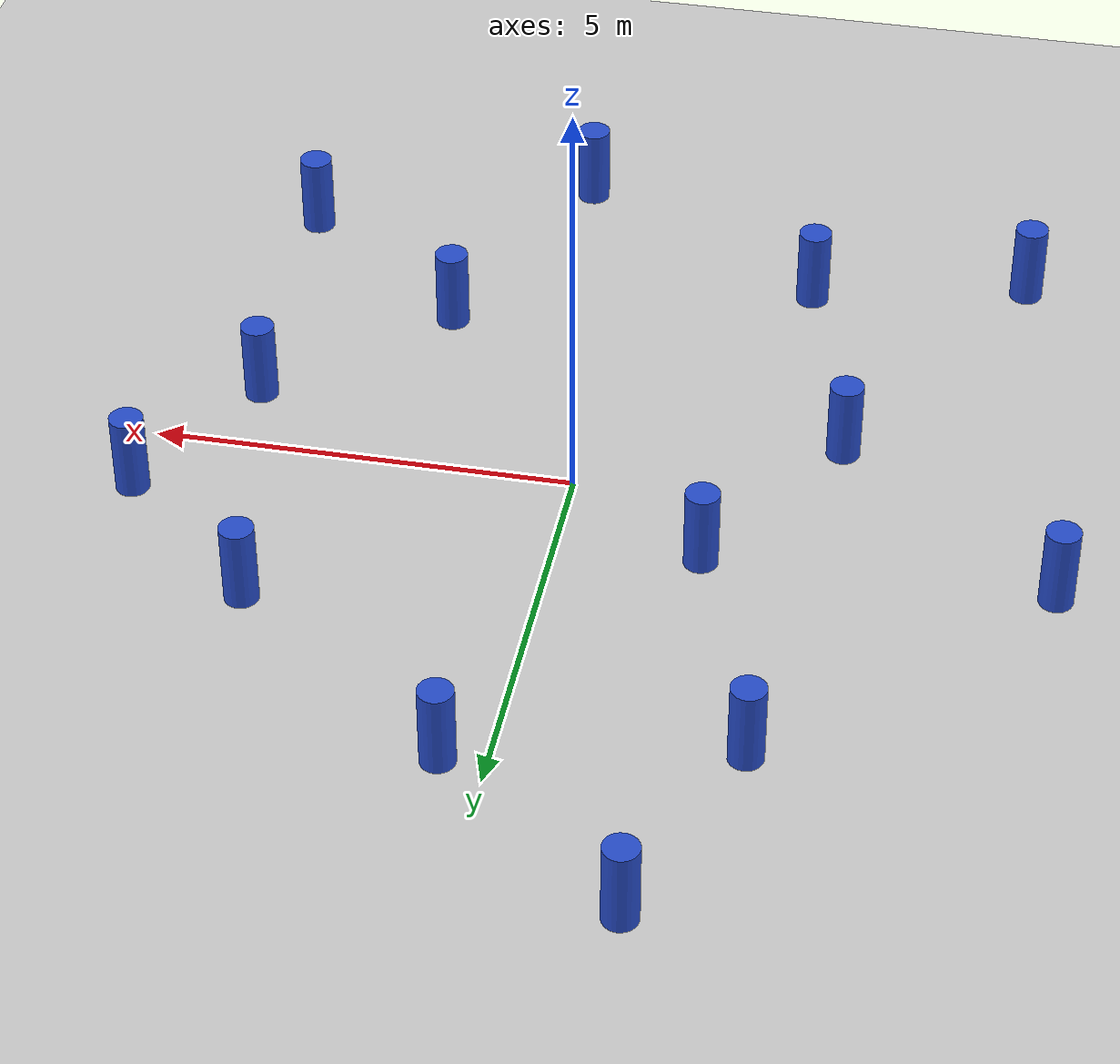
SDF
<sdf version="1.7">
 <world name="default">
  <physics type="ode">
   <ode>
    <solver>
     <type>quick</type>
     <iters>20</iters>
     <sor>1</sor>
     <use_dynamic_moi_rescaling>0</use_dynamic_moi_rescaling>
    </solver>
    <constraints>
     <cfm>0</cfm>
     <erp>0.2</erp>
     <contact_max_correcting_vel>100</contact_max_correcting_vel>
     <contact_surface_layer>0</contact_surface_layer>
    </constraints>
   </ode>
   <real_time_update_rate>1000</real_time_update_rate>
   <max_step_size>0.001</max_step_size>
   <real_time_factor>1</real_time_factor>
  </physics>
  <light name="sun" type="directional">
   <pose>0 0 10 0 -0 0</pose>
   <diffuse>0.8 0.8 0.8 1</diffuse>
   <specular>0.2 0.2 0.2 1</specular>
   <attenuation>
    <range>1000</range>
    <constant>0.9</constant>
    <linear>0.01</linear>
    <quadratic>0.001</quadratic>
   </attenuation>
   <direction>-0.5 0.1 -0.9</direction>
   <spot><inner_angle>0</inner_angle><outer_angle>0</outer_angle><falloff>0</falloff></spot>
  </light>
  <model name="ground_plane">
   <static>1</static>
   <link name="link">
    <collision name="collision">
     <geometry><plane><normal>0 0 1</normal><size>100 100</size></plane></geometry>
     <surface>
      <contact><collide_bitmask>65535</collide_bitmask></contact>
      <friction><ode><mu>100</mu><mu2>50</mu2></ode></friction>
     </surface>
    </collision>
    <visual name="visual">
     <cast_shadows>0</cast_shadows>
     <geometry><plane><normal>0 0 1</normal><size>100 100</size></plane></geometry>
     <material>
      <script><uri>file://media/materials/scripts/gazebo.material</uri><name>Gazebo/Grey</name></script>
     </material>
    </visual>
   </link>
  </model>
  <gravity>0 0 -9.81</gravity>
  <magnetic_field>6e-06 2.3e-05 -4.2e-05</magnetic_field>
  <atmosphere type="adiabatic"/>
  <scene><ambient>0.4 0.4 0.4 1</ambient><background>0.7 0.7 0.7 1</background><shadows>1</shadows></scene>
  <spherical_coordinates>
   <surface_model>EARTH_WGS84</surface_model>
   <latitude_deg>0</latitude_deg>
   <longitude_deg>0</longitude_deg>
   <elevation>0</elevation>
   <heading_deg>0</heading_deg>
  </spherical_coordinates>
  <model name="20x100cm_cylinder">
   <link name="link">
    <inertial>
     <mass>1</mass>
     <inertia><ixx>0.145833</ixx><ixy>0</ixy><ixz>0</ixz><iyy>0.145833</iyy><iyz>0</iyz><izz>0.125</izz></inertia>
    </inertial>
    <visual name="visual">
     <geometry><cylinder><radius>0.2</radius><length>1</length></cylinder></geometry>
     <material>
      <script><name>Gazebo/Blue</name><uri>file://media/materials/scripts/gazebo.material</uri></script>
      <shader type="pixel"><normal_map>__default__</normal_map></shader>
      <ambient>0.3 0.3 0.3 1</ambient>
      <diffuse>0.7 0.7 0.7 1</diffuse>
      <specular>0.01 0.01 0.01 1</specular>
      <emissive>0 0 0 1</emissive>
     </material>
    </visual>
    <collision name="collision">
     <geometry><cylinder><radius>0.2</radius><length>1</length></cylinder></geometry>
     <surface>
      <friction>
       <ode><mu>1</mu><mu2>1</mu2><fdir1>0 0 0</fdir1><slip1>0</slip1><slip2>0</slip2></ode>
       <torsional>
        <coefficient>1</coefficient>
        <patch_radius>0</patch_radius>
        <surface_radius>0</surface_radius>
        <use_patch_radius>1</use_patch_radius>
        <ode><slip>0</slip></ode>
       </torsional>
      </friction>
      <bounce><restitution_coefficient>0</restitution_coefficient><threshold>1e+06</threshold></bounce>
      <contact>
       <collide_without_contact>0</collide_without_contact>
       <collide_without_contact_bitmask>1</collide_without_contact_bitmask>
       <collide_bitmask>1</collide_bitmask>
       <ode>
        <soft_cfm>0</soft_cfm>
        <soft_erp>0.2</soft_erp>
        <kp>1e+13</kp>
        <kd>1</kd>
        <max_vel>0.01</max_vel>
        <min_depth>0</min_depth>
       </ode>
       <bullet>
        <split_impulse>1</split_impulse>
        <split_impulse_penetration_threshold>-0.01</split_impulse_penetration_threshold>
        <soft_cfm>0</soft_cfm>
        <soft_erp>0.2</soft_erp>
        <kp>1e+13</kp>
        <kd>1</kd>
       </bullet>
      </contact>
     </surface>
    </collision>
   </link>
   <static>0</static>
   <pose>3.23524 2.65029 0.499991 0 0 -0.000151</pose>
  </model>
  <model name="20x100cm_cylinder_clone">
   <link name="link">
    <inertial>
     <mass>1</mass>
     <inertia><ixx>0.145833</ixx><ixy>0</ixy><ixz>0</ixz><iyy>0.145833</iyy><iyz>0</iyz><izz>0.125</izz></inertia>
    </inertial>
    <visual name="visual">
     <geometry><cylinder><radius>0.2</radius><length>1</length></cylinder></geometry>
     <material>
      <script><name>Gazebo/Blue</name><uri>file://media/materials/scripts/gazebo.material</uri></script>
      <shader type="pixel"><normal_map>__default__</normal_map></shader>
      <ambient>0.3 0.3 0.3 1</ambient>
      <diffuse>0.7 0.7 0.7 1</diffuse>
      <specular>0.01 0.01 0.01 1</specular>
      <emissive>0 0 0 1</emissive>
     </material>
    </visual>
    <collision name="collision">
     <geometry><cylinder><radius>0.2</radius><length>1</length></cylinder></geometry>
     <surface>
      <friction>
       <ode><mu>1</mu><mu2>1</mu2><fdir1>0 0 0</fdir1><slip1>0</slip1><slip2>0</slip2></ode>
       <torsional>
        <coefficient>1</coefficient>
        <patch_radius>0</patch_radius>
        <surface_radius>0</surface_radius>
        <use_patch_radius>1</use_patch_radius>
        <ode><slip>0</slip></ode>
       </torsional>
      </friction>
      <bounce><restitution_coefficient>0</restitution_coefficient><threshold>1e+06</threshold></bounce>
      <contact>
       <collide_without_contact>0</collide_without_contact>
       <collide_without_contact_bitmask>1</collide_without_contact_bitmask>
       <collide_bitmask>1</collide_bitmask>
       <ode>
        <soft_cfm>0</soft_cfm>
        <soft_erp>0.2</soft_erp>
        <kp>1e+13</kp>
        <kd>1</kd>
        <max_vel>0.01</max_vel>
        <min_depth>0</min_depth>
       </ode>
       <bullet>
        <split_impulse>1</split_impulse>
        <split_impulse_penetration_threshold>-0.01</split_impulse_penetration_threshold>
        <soft_cfm>0</soft_cfm>
        <soft_erp>0.2</soft_erp>
        <kp>1e+13</kp>
        <kd>1</kd>
       </bullet>
      </contact>
     </surface>
    </collision>
   </link>
   <static>0</static>
   <pose>0.513241 4.78146 0.499991 0 0 -0.000152</pose>
  </model>
  <model name="20x100cm_cylinder_clone_0">
   <link name="link">
    <inertial>
     <mass>1</mass>
     <inertia><ixx>0.145833</ixx><ixy>0</ixy><ixz>0</ixz><iyy>0.145833</iyy><iyz>0</iyz><izz>0.125</izz></inertia>
    </inertial>
    <visual name="visual">
     <geometry><cylinder><radius>0.2</radius><length>1</length></cylinder></geometry>
     <material>
      <script><name>Gazebo/Blue</name><uri>file://media/materials/scripts/gazebo.material</uri></script>
      <shader type="pixel"><normal_map>__default__</normal_map></shader>
      <ambient>0.3 0.3 0.3 1</ambient>
      <diffuse>0.7 0.7 0.7 1</diffuse>
      <specular>0.01 0.01 0.01 1</specular>
      <emissive>0 0 0 1</emissive>
     </material>
    </visual>
    <collision name="collision">
     <geometry><cylinder><radius>0.2</radius><length>1</length></cylinder></geometry>
     <surface>
      <friction>
       <ode><mu>1</mu><mu2>1</mu2><fdir1>0 0 0</fdir1><slip1>0</slip1><slip2>0</slip2></ode>
       <torsional>
        <coefficient>1</coefficient>
        <patch_radius>0</patch_radius>
        <surface_radius>0</surface_radius>
        <use_patch_radius>1</use_patch_radius>
        <ode><slip>0</slip></ode>
       </torsional>
      </friction>
      <bounce><restitution_coefficient>0</restitution_coefficient><threshold>1e+06</threshold></bounce>
      <contact>
       <collide_without_contact>0</collide_without_contact>
       <collide_without_contact_bitmask>1</collide_without_contact_bitmask>
       <collide_bitmask>1</collide_bitmask>
       <ode>
        <soft_cfm>0</soft_cfm>
        <soft_erp>0.2</soft_erp>
        <kp>1e+13</kp>
        <kd>1</kd>
        <max_vel>0.01</max_vel>
        <min_depth>0</min_depth>
       </ode>
       <bullet>
        <split_impulse>1</split_impulse>
        <split_impulse_penetration_threshold>-0.01</split_impulse_penetration_threshold>
        <soft_cfm>0</soft_cfm>
        <soft_erp>0.2</soft_erp>
        <kp>1e+13</kp>
        <kd>1</kd>
       </bullet>
      </contact>
     </surface>
    </collision>
   </link>
   <static>0</static>
   <pose>-2.64997 4.13277 0.499991 0 0 -0.000142</pose>
  </model>
  <model name="20x100cm_cylinder_clone_1">
   <link name="link">
    <inertial>
     <mass>1</mass>
     <inertia><ixx>0.145833</ixx><ixy>0</ixy><ixz>0</ixz><iyy>0.145833</iyy><iyz>0</iyz><izz>0.125</izz></inertia>
    </inertial>
    <visual name="visual">
     <geometry><cylinder><radius>0.2</radius><length>1</length></cylinder></geometry>
     <material>
      <script><name>Gazebo/Blue</name><uri>file://media/materials/scripts/gazebo.material</uri></script>
      <shader type="pixel"><normal_map>__default__</normal_map></shader>
      <ambient>0.3 0.3 0.3 1</ambient>
      <diffuse>0.7 0.7 0.7 1</diffuse>
      <specular>0.01 0.01 0.01 1</specular>
      <emissive>0 0 0 1</emissive>
     </material>
    </visual>
    <collision name="collision">
     <geometry><cylinder><radius>0.2</radius><length>1</length></cylinder></geometry>
     <surface>
      <friction>
       <ode><mu>1</mu><mu2>1</mu2><fdir1>0 0 0</fdir1><slip1>0</slip1><slip2>0</slip2></ode>
       <torsional>
        <coefficient>1</coefficient>
        <patch_radius>0</patch_radius>
        <surface_radius>0</surface_radius>
        <use_patch_radius>1</use_patch_radius>
        <ode><slip>0</slip></ode>
       </torsional>
      </friction>
      <bounce><restitution_coefficient>0</restitution_coefficient><threshold>1e+06</threshold></bounce>
      <contact>
       <collide_without_contact>0</collide_without_contact>
       <collide_without_contact_bitmask>1</collide_without_contact_bitmask>
       <collide_bitmask>1</collide_bitmask>
       <ode>
        <soft_cfm>0</soft_cfm>
        <soft_erp>0.2</soft_erp>
        <kp>1e+13</kp>
        <kd>1</kd>
        <max_vel>0.01</max_vel>
        <min_depth>0</min_depth>
       </ode>
       <bullet>
        <split_impulse>1</split_impulse>
        <split_impulse_penetration_threshold>-0.01</split_impulse_penetration_threshold>
        <soft_cfm>0</soft_cfm>
        <soft_erp>0.2</soft_erp>
        <kp>1e+13</kp>
        <kd>1</kd>
       </bullet>
      </contact>
     </surface>
    </collision>
   </link>
   <static>0</static>
   <pose>2.06646 -2.88631 0.5 0 0 -0.000133</pose>
  </model>
  <model name="20x100cm_cylinder_clone_2">
   <link name="link">
    <inertial>
     <mass>1</mass>
     <inertia><ixx>0.145833</ixx><ixy>0</ixy><ixz>0</ixz><iyy>0.145833</iyy><iyz>0</iyz><izz>0.125</izz></inertia>
    </inertial>
    <visual name="visual">
     <geometry><cylinder><radius>0.2</radius><length>1</length></cylinder></geometry>
     <material>
      <script><name>Gazebo/Blue</name><uri>file://media/materials/scripts/gazebo.material</uri></script>
      <shader type="pixel"><normal_map>__default__</normal_map></shader>
      <ambient>0.3 0.3 0.3 1</ambient>
      <diffuse>0.7 0.7 0.7 1</diffuse>
      <specular>0.01 0.01 0.01 1</specular>
      <emissive>0 0 0 1</emissive>
     </material>
    </visual>
    <collision name="collision">
     <geometry><cylinder><radius>0.2</radius><length>1</length></cylinder></geometry>
     <surface>
      <friction>
       <ode><mu>1</mu><mu2>1</mu2><fdir1>0 0 0</fdir1><slip1>0</slip1><slip2>0</slip2></ode>
       <torsional>
        <coefficient>1</coefficient>
        <patch_radius>0</patch_radius>
        <surface_radius>0</surface_radius>
        <use_patch_radius>1</use_patch_radius>
        <ode><slip>0</slip></ode>
       </torsional>
      </friction>
      <bounce><restitution_coefficient>0</restitution_coefficient><threshold>1e+06</threshold></bounce>
      <contact>
       <collide_without_contact>0</collide_without_contact>
       <collide_without_contact_bitmask>1</collide_without_contact_bitmask>
       <collide_bitmask>1</collide_bitmask>
       <ode>
        <soft_cfm>0</soft_cfm>
        <soft_erp>0.2</soft_erp>
        <kp>1e+13</kp>
        <kd>1</kd>
        <max_vel>0.01</max_vel>
        <min_depth>0</min_depth>
       </ode>
       <bullet>
        <split_impulse>1</split_impulse>
        <split_impulse_penetration_threshold>-0.01</split_impulse_penetration_threshold>
        <soft_cfm>0</soft_cfm>
        <soft_erp>0.2</soft_erp>
        <kp>1e+13</kp>
        <kd>1</kd>
       </bullet>
      </contact>
     </surface>
    </collision>
   </link>
   <static>0</static>
   <pose>-3.0093 -1.15809 0.499991 -1e-06 -0 -0.000118</pose>
  </model>
  <model name="20x100cm_cylinder_clone_3">
   <link name="link">
    <inertial>
     <mass>1</mass>
     <inertia><ixx>0.145833</ixx><ixy>0</ixy><ixz>0</ixz><iyy>0.145833</iyy><iyz>0</iyz><izz>0.125</izz></inertia>
    </inertial>
    <visual name="visual">
     <geometry><cylinder><radius>0.2</radius><length>1</length></cylinder></geometry>
     <material>
      <script><name>Gazebo/Blue</name><uri>file://media/materials/scripts/gazebo.material</uri></script>
      <shader type="pixel"><normal_map>__default__</normal_map></shader>
      <ambient>0.3 0.3 0.3 1</ambient>
      <diffuse>0.7 0.7 0.7 1</diffuse>
      <specular>0.01 0.01 0.01 1</specular>
      <emissive>0 0 0 1</emissive>
     </material>
    </visual>
    <collision name="collision">
     <geometry><cylinder><radius>0.2</radius><length>1</length></cylinder></geometry>
     <surface>
      <friction>
       <ode><mu>1</mu><mu2>1</mu2><fdir1>0 0 0</fdir1><slip1>0</slip1><slip2>0</slip2></ode>
       <torsional>
        <coefficient>1</coefficient>
        <patch_radius>0</patch_radius>
        <surface_radius>0</surface_radius>
        <use_patch_radius>1</use_patch_radius>
        <ode><slip>0</slip></ode>
       </torsional>
      </friction>
      <bounce><restitution_coefficient>0</restitution_coefficient><threshold>1e+06</threshold></bounce>
      <contact>
       <collide_without_contact>0</collide_without_contact>
       <collide_without_contact_bitmask>1</collide_without_contact_bitmask>
       <collide_bitmask>1</collide_bitmask>
       <ode>
        <soft_cfm>0</soft_cfm>
        <soft_erp>0.2</soft_erp>
        <kp>1e+13</kp>
        <kd>1</kd>
        <max_vel>0.01</max_vel>
        <min_depth>0</min_depth>
       </ode>
       <bullet>
        <split_impulse>1</split_impulse>
        <split_impulse_penetration_threshold>-0.01</split_impulse_penetration_threshold>
        <soft_cfm>0</soft_cfm>
        <soft_erp>0.2</soft_erp>
        <kp>1e+13</kp>
        <kd>1</kd>
       </bullet>
      </contact>
     </surface>
    </collision>
   </link>
   <static>0</static>
   <pose>-2.24187 -4.17972 0.49999 -0 -0 -0.000114</pose>
  </model>
  <model name="20x100cm_cylinder_clone_4">
   <link name="link">
    <inertial>
     <mass>1</mass>
     <inertia><ixx>0.145833</ixx><ixy>0</ixy><ixz>0</ixz><iyy>0.145833</iyy><iyz>0</iyz><izz>0.125</izz></inertia>
    </inertial>
    <visual name="visual">
     <geometry><cylinder><radius>0.2</radius><length>1</length></cylinder></geometry>
     <material>
      <script><name>Gazebo/Blue</name><uri>file://media/materials/scripts/gazebo.material</uri></script>
      <shader type="pixel"><normal_map>__default__</normal_map></shader>
      <ambient>0.3 0.3 0.3 1</ambient>
      <diffuse>0.7 0.7 0.7 1</diffuse>
      <specular>0.01 0.01 0.01 1</specular>
      <emissive>0 0 0 1</emissive>
     </material>
    </visual>
    <collision name="collision">
     <geometry><cylinder><radius>0.2</radius><length>1</length></cylinder></geometry>
     <surface>
      <friction>
       <ode><mu>1</mu><mu2>1</mu2><fdir1>0 0 0</fdir1><slip1>0</slip1><slip2>0</slip2></ode>
       <torsional>
        <coefficient>1</coefficient>
        <patch_radius>0</patch_radius>
        <surface_radius>0</surface_radius>
        <use_patch_radius>1</use_patch_radius>
        <ode><slip>0</slip></ode>
       </torsional>
      </friction>
      <bounce><restitution_coefficient>0</restitution_coefficient><threshold>1e+06</threshold></bounce>
      <contact>
       <collide_without_contact>0</collide_without_contact>
       <collide_without_contact_bitmask>1</collide_without_contact_bitmask>
       <collide_bitmask>1</collide_bitmask>
       <ode>
        <soft_cfm>0</soft_cfm>
        <soft_erp>0.2</soft_erp>
        <kp>1e+13</kp>
        <kd>1</kd>
        <max_vel>0.01</max_vel>
        <min_depth>0</min_depth>
       </ode>
       <bullet>
        <split_impulse>1</split_impulse>
        <split_impulse_penetration_threshold>-0.01</split_impulse_penetration_threshold>
        <soft_cfm>0</soft_cfm>
        <soft_erp>0.2</soft_erp>
        <kp>1e+13</kp>
        <kd>1</kd>
       </bullet>
      </contact>
     </surface>
    </collision>
   </link>
   <static>0</static>
   <pose>-5.65723 1.00392 0.49999 0 0 -0.00011</pose>
  </model>
  <model name="20x100cm_cylinder_clone_5">
   <link name="link">
    <inertial>
     <mass>1</mass>
     <inertia><ixx>0.145833</ixx><ixy>0</ixy><ixz>0</ixz><iyy>0.145833</iyy><iyz>0</iyz><izz>0.125</izz></inertia>
    </inertial>
    <visual name="visual">
     <geometry><cylinder><radius>0.2</radius><length>1</length></cylinder></geometry>
     <material>
      <script><name>Gazebo/Blue</name><uri>file://media/materials/scripts/gazebo.material</uri></script>
      <shader type="pixel"><normal_map>__default__</normal_map></shader>
      <ambient>0.3 0.3 0.3 1</ambient>
      <diffuse>0.7 0.7 0.7 1</diffuse>
      <specular>0.01 0.01 0.01 1</specular>
      <emissive>0 0 0 1</emissive>
     </material>
    </visual>
    <collision name="collision">
     <geometry><cylinder><radius>0.2</radius><length>1</length></cylinder></geometry>
     <surface>
      <friction>
       <ode><mu>1</mu><mu2>1</mu2><fdir1>0 0 0</fdir1><slip1>0</slip1><slip2>0</slip2></ode>
       <torsional>
        <coefficient>1</coefficient>
        <patch_radius>0</patch_radius>
        <surface_radius>0</surface_radius>
        <use_patch_radius>1</use_patch_radius>
        <ode><slip>0</slip></ode>
       </torsional>
      </friction>
      <bounce><restitution_coefficient>0</restitution_coefficient><threshold>1e+06</threshold></bounce>
      <contact>
       <collide_without_contact>0</collide_without_contact>
       <collide_without_contact_bitmask>1</collide_without_contact_bitmask>
       <collide_bitmask>1</collide_bitmask>
       <ode>
        <soft_cfm>0</soft_cfm>
        <soft_erp>0.2</soft_erp>
        <kp>1e+13</kp>
        <kd>1</kd>
        <max_vel>0.01</max_vel>
        <min_depth>0</min_depth>
       </ode>
       <bullet>
        <split_impulse>1</split_impulse>
        <split_impulse_penetration_threshold>-0.01</split_impulse_penetration_threshold>
        <soft_cfm>0</soft_cfm>
        <soft_erp>0.2</soft_erp>
        <kp>1e+13</kp>
        <kd>1</kd>
       </bullet>
      </contact>
     </surface>
    </collision>
   </link>
   <static>0</static>
   <pose>4.00002 -0.999987 0.499991 0 0 -0.000102</pose>
  </model>
  <model name="20x100cm_cylinder_clone_6">
   <link name="link">
    <inertial>
     <mass>1</mass>
     <inertia><ixx>0.145833</ixx><ixy>0</ixy><ixz>0</ixz><iyy>0.145833</iyy><iyz>0</iyz><izz>0.125</izz></inertia>
    </inertial>
    <visual name="visual">
     <geometry><cylinder><radius>0.2</radius><length>1</length></cylinder></geometry>
     <material>
      <script><name>Gazebo/Blue</name><uri>file://media/materials/scripts/gazebo.material</uri></script>
      <shader type="pixel"><normal_map>__default__</normal_map></shader>
      <ambient>0.3 0.3 0.3 1</ambient>
      <diffuse>0.7 0.7 0.7 1</diffuse>
      <specular>0.01 0.01 0.01 1</specular>
      <emissive>0 0 0 1</emissive>
     </material>
    </visual>
    <collision name="collision">
     <geometry><cylinder><radius>0.2</radius><length>1</length></cylinder></geometry>
     <surface>
      <friction>
       <ode><mu>1</mu><mu2>1</mu2><fdir1>0 0 0</fdir1><slip1>0</slip1><slip2>0</slip2></ode>
       <torsional>
        <coefficient>1</coefficient>
        <patch_radius>0</patch_radius>
        <surface_radius>0</surface_radius>
        <use_patch_radius>1</use_patch_radius>
        <ode><slip>0</slip></ode>
       </torsional>
      </friction>
      <bounce><restitution_coefficient>0</restitution_coefficient><threshold>1e+06</threshold></bounce>
      <contact>
       <collide_without_contact>0</collide_without_contact>
       <collide_without_contact_bitmask>1</collide_without_contact_bitmask>
       <collide_bitmask>1</collide_bitmask>
       <ode>
        <soft_cfm>0</soft_cfm>
        <soft_erp>0.2</soft_erp>
        <kp>1e+13</kp>
        <kd>1</kd>
        <max_vel>0.01</max_vel>
        <min_depth>0</min_depth>
       </ode>
       <bullet>
        <split_impulse>1</split_impulse>
        <split_impulse_penetration_threshold>-0.01</split_impulse_penetration_threshold>
        <soft_cfm>0</soft_cfm>
        <soft_erp>0.2</soft_erp>
        <kp>1e+13</kp>
        <kd>1</kd>
       </bullet>
      </contact>
     </surface>
    </collision>
   </link>
   <static>0</static>
   <pose>0.865565 -5.94131 0.5 0 0 -9.5e-05</pose>
  </model>
  <model name="20x100cm_cylinder_clone_7">
   <link name="link">
    <inertial>
     <mass>1</mass>
     <inertia><ixx>0.145833</ixx><ixy>0</ixy><ixz>0</ixz><iyy>0.145833</iyy><iyz>0</iyz><izz>0.125</izz></inertia>
    </inertial>
    <visual name="visual">
     <geometry><cylinder><radius>0.2</radius><length>1</length></cylinder></geometry>
     <material>
      <script><name>Gazebo/Blue</name><uri>file://media/materials/scripts/gazebo.material</uri></script>
      <shader type="pixel"><normal_map>__default__</normal_map></shader>
      <ambient>0.3 0.3 0.3 1</ambient>
      <diffuse>0.7 0.7 0.7 1</diffuse>
      <specular>0.01 0.01 0.01 1</specular>
      <emissive>0 0 0 1</emissive>
     </material>
    </visual>
    <collision name="collision">
     <geometry><cylinder><radius>0.2</radius><length>1</length></cylinder></geometry>
     <surface>
      <friction>
       <ode><mu>1</mu><mu2>1</mu2><fdir1>0 0 0</fdir1><slip1>0</slip1><slip2>0</slip2></ode>
       <torsional>
        <coefficient>1</coefficient>
        <patch_radius>0</patch_radius>
        <surface_radius>0</surface_radius>
        <use_patch_radius>1</use_patch_radius>
        <ode><slip>0</slip></ode>
       </torsional>
      </friction>
      <bounce><restitution_coefficient>0</restitution_coefficient><threshold>1e+06</threshold></bounce>
      <contact>
       <collide_without_contact>0</collide_without_contact>
       <collide_without_contact_bitmask>1</collide_without_contact_bitmask>
       <collide_bitmask>1</collide_bitmask>
       <ode>
        <soft_cfm>0</soft_cfm>
        <soft_erp>0.2</soft_erp>
        <kp>1e+13</kp>
        <kd>1</kd>
        <max_vel>0.01</max_vel>
        <min_depth>0</min_depth>
       </ode>
       <bullet>
        <split_impulse>1</split_impulse>
        <split_impulse_penetration_threshold>-0.01</split_impulse_penetration_threshold>
        <soft_cfm>0</soft_cfm>
        <soft_erp>0.2</soft_erp>
        <kp>1e+13</kp>
        <kd>1</kd>
       </bullet>
      </contact>
     </surface>
    </collision>
   </link>
   <static>0</static>
   <pose>-4.85649 -4.76802 0.499999 0 0 -7.7e-05</pose>
  </model>
  <model name="20x100cm_cylinder_clone_8">
   <link name="link">
    <inertial>
     <mass>1</mass>
     <inertia><ixx>0.145833</ixx><ixy>0</ixy><ixz>0</ixz><iyy>0.145833</iyy><iyz>0</iyz><izz>0.125</izz></inertia>
    </inertial>
    <visual name="visual">
     <geometry><cylinder><radius>0.2</radius><length>1</length></cylinder></geometry>
     <material>
      <script><name>Gazebo/Blue</name><uri>file://media/materials/scripts/gazebo.material</uri></script>
      <shader type="pixel"><normal_map>__default__</normal_map></shader>
      <ambient>0.3 0.3 0.3 1</ambient>
      <diffuse>0.7 0.7 0.7 1</diffuse>
      <specular>0.01 0.01 0.01 1</specular>
      <emissive>0 0 0 1</emissive>
     </material>
    </visual>
    <collision name="collision">
     <geometry><cylinder><radius>0.2</radius><length>1</length></cylinder></geometry>
     <surface>
      <friction>
       <ode><mu>1</mu><mu2>1</mu2><fdir1>0 0 0</fdir1><slip1>0</slip1><slip2>0</slip2></ode>
       <torsional>
        <coefficient>1</coefficient>
        <patch_radius>0</patch_radius>
        <surface_radius>0</surface_radius>
        <use_patch_radius>1</use_patch_radius>
        <ode><slip>0</slip></ode>
       </torsional>
      </friction>
      <bounce><restitution_coefficient>0</restitution_coefficient><threshold>1e+06</threshold></bounce>
      <contact>
       <collide_without_contact>0</collide_without_contact>
       <collide_without_contact_bitmask>1</collide_without_contact_bitmask>
       <collide_bitmask>1</collide_bitmask>
       <ode>
        <soft_cfm>0</soft_cfm>
        <soft_erp>0.2</soft_erp>
        <kp>1e+13</kp>
        <kd>1</kd>
        <max_vel>0.01</max_vel>
        <min_depth>0</min_depth>
       </ode>
       <bullet>
        <split_impulse>1</split_impulse>
        <split_impulse_penetration_threshold>-0.01</split_impulse_penetration_threshold>
        <soft_cfm>0</soft_cfm>
        <soft_erp>0.2</soft_erp>
        <kp>1e+13</kp>
        <kd>1</kd>
       </bullet>
      </contact>
     </surface>
    </collision>
   </link>
   <static>0</static>
   <pose>-1.68009 1.09309 0.5 0 0 -5.9e-05</pose>
  </model>
  <model name="20x100cm_cylinder_clone_9">
   <link name="link">
    <inertial>
     <mass>1</mass>
     <inertia><ixx>0.145833</ixx><ixy>0</ixy><ixz>0</ixz><iyy>0.145833</iyy><iyz>0</iyz><izz>0.125</izz></inertia>
    </inertial>
    <visual name="visual">
     <geometry><cylinder><radius>0.2</radius><length>1</length></cylinder></geometry>
     <material>
      <script><name>Gazebo/Blue</name><uri>file://media/materials/scripts/gazebo.material</uri></script>
      <shader type="pixel"><normal_map>__default__</normal_map></shader>
      <ambient>0.3 0.3 0.3 1</ambient>
      <diffuse>0.7 0.7 0.7 1</diffuse>
      <specular>0.01 0.01 0.01 1</specular>
      <emissive>0 0 0 1</emissive>
     </material>
    </visual>
    <collision name="collision">
     <geometry><cylinder><radius>0.2</radius><length>1</length></cylinder></geometry>
     <surface>
      <friction>
       <ode><mu>1</mu><mu2>1</mu2><fdir1>0 0 0</fdir1><slip1>0</slip1><slip2>0</slip2></ode>
       <torsional>
        <coefficient>1</coefficient>
        <patch_radius>0</patch_radius>
        <surface_radius>0</surface_radius>
        <use_patch_radius>1</use_patch_radius>
        <ode><slip>0</slip></ode>
       </torsional>
      </friction>
      <bounce><restitution_coefficient>0</restitution_coefficient><threshold>1e+06</threshold></bounce>
      <contact>
       <collide_without_contact>0</collide_without_contact>
       <collide_without_contact_bitmask>1</collide_without_contact_bitmask>
       <collide_bitmask>1</collide_bitmask>
       <ode>
        <soft_cfm>0</soft_cfm>
        <soft_erp>0.2</soft_erp>
        <kp>1e+13</kp>
        <kd>1</kd>
        <max_vel>0.01</max_vel>
        <min_depth>0</min_depth>
       </ode>
       <bullet>
        <split_impulse>1</split_impulse>
        <split_impulse_penetration_threshold>-0.01</split_impulse_penetration_threshold>
        <soft_cfm>0</soft_cfm>
        <soft_erp>0.2</soft_erp>
        <kp>1e+13</kp>
        <kd>1</kd>
       </bullet>
      </contact>
     </surface>
    </collision>
   </link>
   <static>0</static>
   <pose>5.00001 1.00001 0.499999 0 0 -5.3e-05</pose>
  </model>
  <model name="20x100cm_cylinder_clone_10">
   <link name="link">
    <inertial>
     <mass>1</mass>
     <inertia><ixx>0.145833</ixx><ixy>0</ixy><ixz>0</ixz><iyy>0.145833</iyy><iyz>0</iyz><izz>0.125</izz></inertia>
    </inertial>
    <visual name="visual">
     <geometry><cylinder><radius>0.2</radius><length>1</length></cylinder></geometry>
     <material>
      <script><name>Gazebo/Blue</name><uri>file://media/materials/scripts/gazebo.material</uri></script>
      <shader type="pixel"><normal_map>__default__</normal_map></shader>
      <ambient>0.3 0.3 0.3 1</ambient>
      <diffuse>0.7 0.7 0.7 1</diffuse>
      <specular>0.01 0.01 0.01 1</specular>
      <emissive>0 0 0 1</emissive>
     </material>
    </visual>
    <collision name="collision">
     <geometry><cylinder><radius>0.2</radius><length>1</length></cylinder></geometry>
     <surface>
      <friction>
       <ode><mu>1</mu><mu2>1</mu2><fdir1>0 0 0</fdir1><slip1>0</slip1><slip2>0</slip2></ode>
       <torsional>
        <coefficient>1</coefficient>
        <patch_radius>0</patch_radius>
        <surface_radius>0</surface_radius>
        <use_patch_radius>1</use_patch_radius>
        <ode><slip>0</slip></ode>
       </torsional>
      </friction>
      <bounce><restitution_coefficient>0</restitution_coefficient><threshold>1e+06</threshold></bounce>
      <contact>
       <collide_without_contact>0</collide_without_contact>
       <collide_without_contact_bitmask>1</collide_without_contact_bitmask>
       <collide_bitmask>1</collide_bitmask>
       <ode>
        <soft_cfm>0</soft_cfm>
        <soft_erp>0.2</soft_erp>
        <kp>1e+13</kp>
        <kd>1</kd>
        <max_vel>0.01</max_vel>
        <min_depth>0</min_depth>
       </ode>
       <bullet>
        <split_impulse>1</split_impulse>
        <split_impulse_penetration_threshold>-0.01</split_impulse_penetration_threshold>
        <soft_cfm>0</soft_cfm>
        <soft_erp>0.2</soft_erp>
        <kp>1e+13</kp>
        <kd>1</kd>
       </bullet>
      </contact>
     </surface>
    </collision>
   </link>
   <static>0</static>
   <pose>4.22324 -4.61151 0.499991 0 0 -4.8e-05</pose>
  </model>
  <model name="20x100cm_cylinder_clone_11">
   <link name="link">
    <inertial>
     <mass>1</mass>
     <inertia><ixx>0.145833</ixx><ixy>0</ixy><ixz>0</ixz><iyy>0.145833</iyy><iyz>0</iyz><izz>0.125</izz></inertia>
    </inertial>
    <visual name="visual">
     <geometry><cylinder><radius>0.2</radius><length>1</length></cylinder></geometry>
     <material>
      <script><name>Gazebo/Blue</name><uri>file://media/materials/scripts/gazebo.material</uri></script>
      <shader type="pixel"><normal_map>__default__</normal_map></shader>
      <ambient>0.3 0.3 0.3 1</ambient>
      <diffuse>0.7 0.7 0.7 1</diffuse>
      <specular>0.01 0.01 0.01 1</specular>
      <emissive>0 0 0 1</emissive>
     </material>
    </visual>
    <collision name="collision">
     <geometry><cylinder><radius>0.2</radius><length>1</length></cylinder></geometry>
     <surface>
      <friction>
       <ode><mu>1</mu><mu2>1</mu2><fdir1>0 0 0</fdir1><slip1>0</slip1><slip2>0</slip2></ode>
       <torsional>
        <coefficient>1</coefficient>
        <patch_radius>0</patch_radius>
        <surface_radius>0</surface_radius>
        <use_patch_radius>1</use_patch_radius>
        <ode><slip>0</slip></ode>
       </torsional>
      </friction>
      <bounce><restitution_coefficient>0</restitution_coefficient><threshold>1e+06</threshold></bounce>
      <contact>
       <collide_without_contact>0</collide_without_contact>
       <collide_without_contact_bitmask>1</collide_without_contact_bitmask>
       <collide_bitmask>1</collide_bitmask>
       <ode>
        <soft_cfm>0</soft_cfm>
        <soft_erp>0.2</soft_erp>
        <kp>1e+13</kp>
        <kd>1</kd>
        <max_vel>0.01</max_vel>
        <min_depth>0</min_depth>
       </ode>
       <bullet>
        <split_impulse>1</split_impulse>
        <split_impulse_penetration_threshold>-0.01</split_impulse_penetration_threshold>
        <soft_cfm>0</soft_cfm>
        <soft_erp>0.2</soft_erp>
        <kp>1e+13</kp>
        <kd>1</kd>
       </bullet>
      </contact>
     </surface>
    </collision>
   </link>
   <static>0</static>
   <pose>-1.76414 6.62376 0.499991 0 0 -3.8e-05</pose>
  </model>
 </world>
</sdf>
